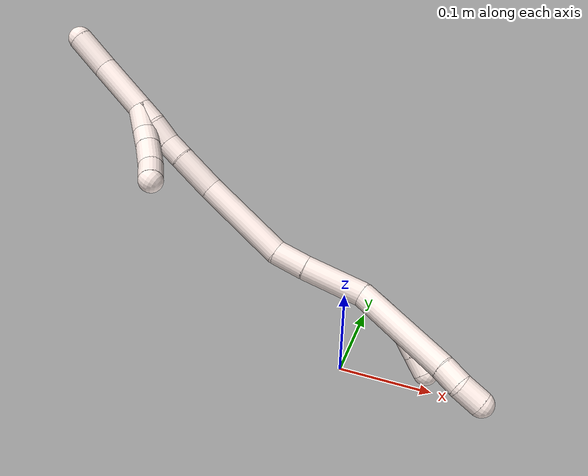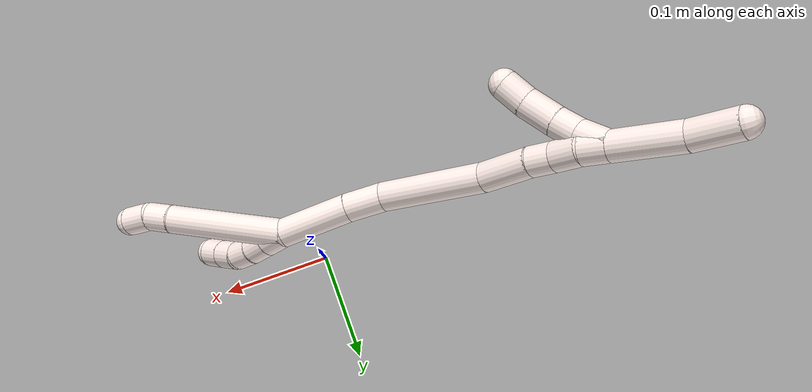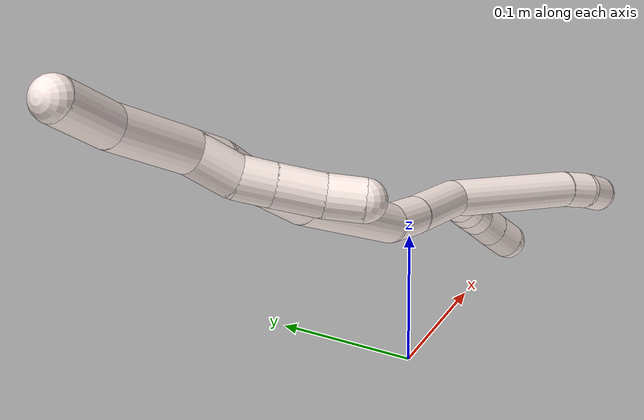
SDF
<sdf version="1.7">
 <world name="default">
  <model name="photoneo_s_sensor">
   <static>1</static>
   <pose>0 0 2 1.57079 1.57079 3.14159</pose>
   <link name="link">
    <inertial><mass>0.1</mass></inertial>
    <sensor name="sensor" type="depth">
     <update_rate>30</update_rate>
     <camera>
      <horizontal_fov>1.22</horizontal_fov>
      <image><width>1920</width><height>1200</height><format>B8G8R8</format></image>
      <clip><near>0.1</near><far>4</far></clip>
      <depth_camera><output>points</output></depth_camera>
     </camera>
     <plugin name="camera_plugin" filename="libgazebo_ros_depth_camera.so">
      <baseline>0.2</baseline>
      <alwaysOn>1</alwaysOn>
      <updateRate>0.0</updateRate>
      <cameraName>camera_ir</cameraName>
      <imageTopicName>/camera/color/image_raw</imageTopicName>
      <cameraInfoTopicName>/camera/color/camera_info</cameraInfoTopicName>
      <depthImageTopicName>/camera/depth/image_raw</depthImageTopicName>
      <depthImageCameraInfoTopicName>/camera/depth/camera_info</depthImageCameraInfoTopicName>
      <pointCloudTopicName>/camera/depth/points</pointCloudTopicName>
      <frameName>fr_optical</frameName>
      <pointCloudCutoff>0.1</pointCloudCutoff>
      <pointCloudCutoffMax>2.0</pointCloudCutoffMax>
      <distortionK1>0</distortionK1>
      <distortionK2>0</distortionK2>
      <distortionK3>0</distortionK3>
      <distortionT1>0</distortionT1>
      <distortionT2>0</distortionT2>
      <CxPrime>0</CxPrime>
      <Cx>0</Cx>
      <Cy>0</Cy>
      <focalLength>0</focalLength>
      <hackBaseline>0</hackBaseline>
     </plugin>
    </sensor>
   </link>
  </model>
  <model name="bin">
   <static>1</static>
   <link name="bottom">
    <collision name="collision-bottom">
     <pose>0 0 -0.01 0 -0 0</pose>
     <geometry><box><size>0.8 0.6 0.02</size></box></geometry>
     <surface>
      <friction><ode><mu>100</mu><mu2>100</mu2></ode></friction>
      <contact><collide_bitmask>65535</collide_bitmask></contact>
     </surface>
    </collision>
   </link>
   <link name="west_wall">
    <collision name="collision-west_wall">
     <pose>-0.41 0 0.1 0 -0 0</pose>
     <geometry><box><size>0.02 0.6 0.2</size></box></geometry>
     <surface>
      <friction><ode><mu>100</mu><mu2>100</mu2></ode></friction>
      <contact><collide_bitmask>65535</collide_bitmask></contact>
     </surface>
    </collision>
   </link>
   <link name="east_wall">
    <collision name="collision-east_wall">
     <pose>0.41 0 0.1 0 -0 0</pose>
     <geometry><box><size>0.02 0.6 0.2</size></box></geometry>
     <surface>
      <friction><ode><mu>100</mu><mu2>100</mu2></ode></friction>
      <contact><collide_bitmask>65535</collide_bitmask></contact>
     </surface>
    </collision>
   </link>
   <link name="south_wall">
    <collision name="collision-south_wall">
     <pose>0 -0.31 0.1 0 -0 0</pose>
     <geometry><box><size>0.8 0.02 0.2</size></box></geometry>
     <surface>
      <friction><ode><mu>100</mu><mu2>100</mu2></ode></friction>
      <contact><collide_bitmask>65535</collide_bitmask></contact>
     </surface>
    </collision>
   </link>
   <link name="north_wall">
    <collision name="collision-north_wall">
     <pose>0 0.31 0.1 0 -0 0</pose>
     <geometry><box><size>0.8 0.02 0.2</size></box></geometry>
     <surface>
      <friction><ode><mu>100</mu><mu2>100</mu2></ode></friction>
      <contact><collide_bitmask>65535</collide_bitmask></contact>
     </surface>
    </collision>
   </link>
  </model>
  <model name="11">
   <static>0</static>
   <link name="11">
    <collision name="collision-cylinder-e_1_2_8">
     <pose>0.018518 -0.007825 -0.04826 2.98086 0.362059 2.31252</pose>
     <geometry><cylinder><radius>0.0125</radius><length>0.10456</length></cylinder></geometry>
     <surface>
      <friction><ode><mu>1.16</mu><mu2>1.16</mu2><slip1>0</slip1><slip2>0</slip2></ode></friction>
      <contact><ode><kp>1e+06</kp><kd>1</kd><max_vel>0</max_vel><min_depth>0.001</min_depth></ode></contact>
     </surface>
    </collision>
    <visual name="visual-cylinder-e_1_2_8">
     <pose>0.018518 -0.007825 -0.04826 2.98086 0.362059 2.31252</pose>
     <geometry><cylinder><radius>0.0125</radius><length>0.10456</length></cylinder></geometry>
     <material><ambient>1 0.933333 0.909804 1</ambient></material>
    </visual>
    <collision name="collision-cylinder-e_2_8_9">
     <pose>0.040059 -0.018103 -0.106786 2.90697 0.278997 1.74505</pose>
     <geometry><cylinder><radius>0.0125</radius><length>0.021958</length></cylinder></geometry>
     <surface>
      <friction><ode><mu>1.16</mu><mu2>1.16</mu2><slip1>0</slip1><slip2>0</slip2></ode></friction>
      <contact><ode><kp>1e+06</kp><kd>1</kd><max_vel>0</max_vel><min_depth>0.001</min_depth></ode></contact>
     </surface>
    </collision>
    <visual name="visual-cylinder-e_2_8_9">
     <pose>0.040059 -0.018103 -0.106786 2.90697 0.278997 1.74505</pose>
     <geometry><cylinder><radius>0.0125</radius><length>0.021958</length></cylinder></geometry>
     <material><ambient>1 0.933333 0.909804 1</ambient></material>
    </visual>
    <collision name="collision-cylinder-e_3_9_6">
     <pose>0.042825 -0.021779 -0.128726 3.03723 -0.021914 -0.413598</pose>
     <geometry><cylinder><radius>0.0125</radius><length>0.023482</length></cylinder></geometry>
     <surface>
      <friction><ode><mu>1.16</mu><mu2>1.16</mu2><slip1>0</slip1><slip2>0</slip2></ode></friction>
      <contact><ode><kp>1e+06</kp><kd>1</kd><max_vel>0</max_vel><min_depth>0.001</min_depth></ode></contact>
     </surface>
    </collision>
    <visual name="visual-cylinder-e_3_9_6">
     <pose>0.042825 -0.021779 -0.128726 3.03723 -0.021914 -0.413598</pose>
     <geometry><cylinder><radius>0.0125</radius><length>0.023482</length></cylinder></geometry>
     <material><ambient>1 0.933333 0.909804 1</ambient></material>
    </visual>
    <collision name="collision-cylinder-e_1_2_10">
     <pose>-0.002828 -0.000738 -0.009563 3.06458 -0.286703 -2.61995</pose>
     <geometry><cylinder><radius>0.0125</radius><length>0.02</length></cylinder></geometry>
     <surface>
      <friction><ode><mu>1.16</mu><mu2>1.16</mu2><slip1>0</slip1><slip2>0</slip2></ode></friction>
      <contact><ode><kp>1e+06</kp><kd>1</kd><max_vel>0</max_vel><min_depth>0.001</min_depth></ode></contact>
     </surface>
    </collision>
    <visual name="visual-cylinder-e_1_2_10">
     <pose>-0.002828 -0.000738 -0.009563 3.06458 -0.286703 -2.61995</pose>
     <geometry><cylinder><radius>0.0125</radius><length>0.02</length></cylinder></geometry>
     <material><ambient>1 0.933333 0.909804 1</ambient></material>
    </visual>
    <collision name="collision-cylinder-e_2_10_11">
     <pose>-0.00855 -0.002384 -0.028656 3.04658 -0.293606 -2.51941</pose>
     <geometry><cylinder><radius>0.0125</radius><length>0.02</length></cylinder></geometry>
     <surface>
      <friction><ode><mu>1.16</mu><mu2>1.16</mu2><slip1>0</slip1><slip2>0</slip2></ode></friction>
      <contact><ode><kp>1e+06</kp><kd>1</kd><max_vel>0</max_vel><min_depth>0.001</min_depth></ode></contact>
     </surface>
    </collision>
    <visual name="visual-cylinder-e_2_10_11">
     <pose>-0.00855 -0.002384 -0.028656 3.04658 -0.293606 -2.51941</pose>
     <geometry><cylinder><radius>0.0125</radius><length>0.02</length></cylinder></geometry>
     <material><ambient>1 0.933333 0.909804 1</ambient></material>
    </visual>
    <collision name="collision-cylinder-e_3_11_12">
     <pose>-0.013704 -0.004977 -0.047779 2.96778 -0.228013 -1.84069</pose>
     <geometry><cylinder><radius>0.0125</radius><length>0.02</length></cylinder></geometry>
     <surface>
      <friction><ode><mu>1.16</mu><mu2>1.16</mu2><slip1>0</slip1><slip2>0</slip2></ode></friction>
      <contact><ode><kp>1e+06</kp><kd>1</kd><max_vel>0</max_vel><min_depth>0.001</min_depth></ode></contact>
     </surface>
    </collision>
    <visual name="visual-cylinder-e_3_11_12">
     <pose>-0.013704 -0.004977 -0.047779 2.96778 -0.228013 -1.84069</pose>
     <geometry><cylinder><radius>0.0125</radius><length>0.02</length></cylinder></geometry>
     <material><ambient>1 0.933333 0.909804 1</ambient></material>
    </visual>
    <collision name="collision-cylinder-e_4_12_13">
     <pose>-0.016773 -0.011285 -0.066204 2.65925 -0.080868 -0.32605</pose>
     <geometry><cylinder><radius>0.0125</radius><length>0.02</length></cylinder></geometry>
     <surface>
      <friction><ode><mu>1.16</mu><mu2>1.16</mu2><slip1>0</slip1><slip2>0</slip2></ode></friction>
      <contact><ode><kp>1e+06</kp><kd>1</kd><max_vel>0</max_vel><min_depth>0.001</min_depth></ode></contact>
     </surface>
    </collision>
    <visual name="visual-cylinder-e_4_12_13">
     <pose>-0.016773 -0.011285 -0.066204 2.65925 -0.080868 -0.32605</pose>
     <geometry><cylinder><radius>0.0125</radius><length>0.02</length></cylinder></geometry>
     <material><ambient>1 0.933333 0.909804 1</ambient></material>
    </visual>
    <collision name="collision-cylinder-e_5_13_5">
     <pose>-0.018187 -0.020572 -0.083859 2.65545 -0.06071 -0.243687</pose>
     <geometry><cylinder><radius>0.0125</radius><length>0.02</length></cylinder></geometry>
     <surface>
      <friction><ode><mu>1.16</mu><mu2>1.16</mu2><slip1>0</slip1><slip2>0</slip2></ode></friction>
      <contact><ode><kp>1e+06</kp><kd>1</kd><max_vel>0</max_vel><min_depth>0.001</min_depth></ode></contact>
     </surface>
    </collision>
    <visual name="visual-cylinder-e_5_13_5">
     <pose>-0.018187 -0.020572 -0.083859 2.65545 -0.06071 -0.243687</pose>
     <geometry><cylinder><radius>0.0125</radius><length>0.02</length></cylinder></geometry>
     <material><ambient>1 0.933333 0.909804 1</ambient></material>
    </visual>
    <collision name="collision-cylinder-e_1_2_14">
     <pose>-0.000804 -0.005528 0.030603 0.1787 -0.025851 -0.002316</pose>
     <geometry><cylinder><radius>0.0125</radius><length>0.062217</length></cylinder></geometry>
     <surface>
      <friction><ode><mu>1.16</mu><mu2>1.16</mu2><slip1>0</slip1><slip2>0</slip2></ode></friction>
      <contact><ode><kp>1e+06</kp><kd>1</kd><max_vel>0</max_vel><min_depth>0.001</min_depth></ode></contact>
     </surface>
    </collision>
    <visual name="visual-cylinder-e_1_2_14">
     <pose>-0.000804 -0.005528 0.030603 0.1787 -0.025851 -0.002316</pose>
     <geometry><cylinder><radius>0.0125</radius><length>0.062217</length></cylinder></geometry>
     <material><ambient>1 0.933333 0.909804 1</ambient></material>
    </visual>
    <collision name="collision-cylinder-e_2_14_15">
     <pose>-0.002693 -0.013003 0.07749 0.11904 -0.066081 -0.003939</pose>
     <geometry><cylinder><radius>0.0125</radius><length>0.032871</length></cylinder></geometry>
     <surface>
      <friction><ode><mu>1.16</mu><mu2>1.16</mu2><slip1>0</slip1><slip2>0</slip2></ode></friction>
      <contact><ode><kp>1e+06</kp><kd>1</kd><max_vel>0</max_vel><min_depth>0.001</min_depth></ode></contact>
     </surface>
    </collision>
    <visual name="visual-cylinder-e_2_14_15">
     <pose>-0.002693 -0.013003 0.07749 0.11904 -0.066081 -0.003939</pose>
     <geometry><cylinder><radius>0.0125</radius><length>0.032871</length></cylinder></geometry>
     <material><ambient>1 0.933333 0.909804 1</ambient></material>
    </visual>
    <collision name="collision-cylinder-e_3_15_16">
     <pose>-0.002837 -0.007853 0.140159 -0.151844 0.02006 -0.001526</pose>
     <geometry><cylinder><radius>0.0125</radius><length>0.093869</length></cylinder></geometry>
     <surface>
      <friction><ode><mu>1.16</mu><mu2>1.16</mu2><slip1>0</slip1><slip2>0</slip2></ode></friction>
      <contact><ode><kp>1e+06</kp><kd>1</kd><max_vel>0</max_vel><min_depth>0.001</min_depth></ode></contact>
     </surface>
    </collision>
    <visual name="visual-cylinder-e_3_15_16">
     <pose>-0.002837 -0.007853 0.140159 -0.151844 0.02006 -0.001526</pose>
     <geometry><cylinder><radius>0.0125</radius><length>0.093869</length></cylinder></geometry>
     <material><ambient>1 0.933333 0.909804 1</ambient></material>
    </visual>
    <collision name="collision-cylinder-e_4_16_17">
     <pose>0.002214 0.003129 0.20772 -0.181394 0.188611 -0.017204</pose>
     <geometry><cylinder><radius>0.0125</radius><length>0.043836</length></cylinder></geometry>
     <surface>
      <friction><ode><mu>1.16</mu><mu2>1.16</mu2><slip1>0</slip1><slip2>0</slip2></ode></friction>
      <contact><ode><kp>1e+06</kp><kd>1</kd><max_vel>0</max_vel><min_depth>0.001</min_depth></ode></contact>
     </surface>
    </collision>
    <visual name="visual-cylinder-e_4_16_17">
     <pose>0.002214 0.003129 0.20772 -0.181394 0.188611 -0.017204</pose>
     <geometry><cylinder><radius>0.0125</radius><length>0.043836</length></cylinder></geometry>
     <material><ambient>1 0.933333 0.909804 1</ambient></material>
    </visual>
    <collision name="collision-cylinder-e_5_17_18">
     <pose>0.007102 0.008984 0.239051 -0.191726 0.075128 -0.007227</pose>
     <geometry><cylinder><radius>0.0125</radius><length>0.020746</length></cylinder></geometry>
     <surface>
      <friction><ode><mu>1.16</mu><mu2>1.16</mu2><slip1>0</slip1><slip2>0</slip2></ode></friction>
      <contact><ode><kp>1e+06</kp><kd>1</kd><max_vel>0</max_vel><min_depth>0.001</min_depth></ode></contact>
     </surface>
    </collision>
    <visual name="visual-cylinder-e_5_17_18">
     <pose>0.007102 0.008984 0.239051 -0.191726 0.075128 -0.007227</pose>
     <geometry><cylinder><radius>0.0125</radius><length>0.020746</length></cylinder></geometry>
     <material><ambient>1 0.933333 0.909804 1</ambient></material>
    </visual>
    <collision name="collision-cylinder-e_6_18_19">
     <pose>0.010287 0.014523 0.260566 -0.304291 0.199373 -0.030669</pose>
     <geometry><cylinder><radius>0.0125</radius><length>0.024298</length></cylinder></geometry>
     <surface>
      <friction><ode><mu>1.16</mu><mu2>1.16</mu2><slip1>0</slip1><slip2>0</slip2></ode></friction>
      <contact><ode><kp>1e+06</kp><kd>1</kd><max_vel>0</max_vel><min_depth>0.001</min_depth></ode></contact>
     </surface>
    </collision>
    <visual name="visual-cylinder-e_6_18_19">
     <pose>0.010287 0.014523 0.260566 -0.304291 0.199373 -0.030669</pose>
     <geometry><cylinder><radius>0.0125</radius><length>0.024298</length></cylinder></geometry>
     <material><ambient>1 0.933333 0.909804 1</ambient></material>
    </visual>
    <collision name="collision-cylinder-e_7_19_1">
     <pose>0.012825 0.02066 0.282706 -0.233957 0.011963 -0.001406</pose>
     <geometry><cylinder><radius>0.0125</radius><length>0.022162</length></cylinder></geometry>
     <surface>
      <friction><ode><mu>1.16</mu><mu2>1.16</mu2><slip1>0</slip1><slip2>0</slip2></ode></friction>
      <contact><ode><kp>1e+06</kp><kd>1</kd><max_vel>0</max_vel><min_depth>0.001</min_depth></ode></contact>
     </surface>
    </collision>
    <visual name="visual-cylinder-e_7_19_1">
     <pose>0.012825 0.02066 0.282706 -0.233957 0.011963 -0.001406</pose>
     <geometry><cylinder><radius>0.0125</radius><length>0.022162</length></cylinder></geometry>
     <material><ambient>1 0.933333 0.909804 1</ambient></material>
    </visual>
    <collision name="collision-cylinder-e_1_1_20">
     <pose>0.015157 0.014269 0.282897 2.43927 0.157251 0.423675</pose>
     <geometry><cylinder><radius>0.0125</radius><length>0.028084</length></cylinder></geometry>
     <surface>
      <friction><ode><mu>1.16</mu><mu2>1.16</mu2><slip1>0</slip1><slip2>0</slip2></ode></friction>
      <contact><ode><kp>1e+06</kp><kd>1</kd><max_vel>0</max_vel><min_depth>0.001</min_depth></ode></contact>
     </surface>
    </collision>
    <visual name="visual-cylinder-e_1_1_20">
     <pose>0.015157 0.014269 0.282897 2.43927 0.157251 0.423675</pose>
     <geometry><cylinder><radius>0.0125</radius><length>0.028084</length></cylinder></geometry>
     <material><ambient>1 0.933333 0.909804 1</ambient></material>
    </visual>
    <collision name="collision-cylinder-e_2_20_21">
     <pose>0.02206 -0.000279 0.264725 2.50664 0.463086 1.24478</pose>
     <geometry><cylinder><radius>0.0125</radius><length>0.021064</length></cylinder></geometry>
     <surface>
      <friction><ode><mu>1.16</mu><mu2>1.16</mu2><slip1>0</slip1><slip2>0</slip2></ode></friction>
      <contact><ode><kp>1e+06</kp><kd>1</kd><max_vel>0</max_vel><min_depth>0.001</min_depth></ode></contact>
     </surface>
    </collision>
    <visual name="visual-cylinder-e_2_20_21">
     <pose>0.02206 -0.000279 0.264725 2.50664 0.463086 1.24478</pose>
     <geometry><cylinder><radius>0.0125</radius><length>0.021064</length></cylinder></geometry>
     <material><ambient>1 0.933333 0.909804 1</ambient></material>
    </visual>
    <collision name="collision-cylinder-e_3_21_22">
     <pose>0.033823 -0.013663 0.247559 2.45856 0.519195 1.28342</pose>
     <geometry><cylinder><radius>0.0125</radius><length>0.02845</length></cylinder></geometry>
     <surface>
      <friction><ode><mu>1.16</mu><mu2>1.16</mu2><slip1>0</slip1><slip2>0</slip2></ode></friction>
      <contact><ode><kp>1e+06</kp><kd>1</kd><max_vel>0</max_vel><min_depth>0.001</min_depth></ode></contact>
     </surface>
    </collision>
    <visual name="visual-cylinder-e_3_21_22">
     <pose>0.033823 -0.013663 0.247559 2.45856 0.519195 1.28342</pose>
     <geometry><cylinder><radius>0.0125</radius><length>0.02845</length></cylinder></geometry>
     <material><ambient>1 0.933333 0.909804 1</ambient></material>
    </visual>
    <collision name="collision-cylinder-e_4_22_4">
     <pose>0.047889 -0.027367 0.231541 2.39894 0.675909 1.46843</pose>
     <geometry><cylinder><radius>0.0125</radius><length>0.022402</length></cylinder></geometry>
     <surface>
      <friction><ode><mu>1.16</mu><mu2>1.16</mu2><slip1>0</slip1><slip2>0</slip2></ode></friction>
      <contact><ode><kp>1e+06</kp><kd>1</kd><max_vel>0</max_vel><min_depth>0.001</min_depth></ode></contact>
     </surface>
    </collision>
    <visual name="visual-cylinder-e_4_22_4">
     <pose>0.047889 -0.027367 0.231541 2.39894 0.675909 1.46843</pose>
     <geometry><cylinder><radius>0.0125</radius><length>0.022402</length></cylinder></geometry>
     <material><ambient>1 0.933333 0.909804 1</ambient></material>
    </visual>
    <collision name="collision-cylinder-e_1_1_23">
     <pose>0.013236 0.030038 0.32226 -0.232374 0.009418 -0.001099</pose>
     <geometry><cylinder><radius>0.0125</radius><length>0.059144</length></cylinder></geometry>
     <surface>
      <friction><ode><mu>1.16</mu><mu2>1.16</mu2><slip1>0</slip1><slip2>0</slip2></ode></friction>
      <contact><ode><kp>1e+06</kp><kd>1</kd><max_vel>0</max_vel><min_depth>0.001</min_depth></ode></contact>
     </surface>
    </collision>
    <visual name="visual-cylinder-e_1_1_23">
     <pose>0.013236 0.030038 0.32226 -0.232374 0.009418 -0.001099</pose>
     <geometry><cylinder><radius>0.0125</radius><length>0.059144</length></cylinder></geometry>
     <material><ambient>1 0.933333 0.909804 1</ambient></material>
    </visual>
    <collision name="collision-cylinder-e_2_23_3">
     <pose>0.016442 0.041608 0.370684 -0.237671 0.143813 -0.0172</pose>
     <geometry><cylinder><radius>0.0125</radius><length>0.040856</length></cylinder></geometry>
     <surface>
      <friction><ode><mu>1.16</mu><mu2>1.16</mu2><slip1>0</slip1><slip2>0</slip2></ode></friction>
      <contact><ode><kp>1e+06</kp><kd>1</kd><max_vel>0</max_vel><min_depth>0.001</min_depth></ode></contact>
     </surface>
    </collision>
    <visual name="visual-cylinder-e_2_23_3">
     <pose>0.016442 0.041608 0.370684 -0.237671 0.143813 -0.0172</pose>
     <geometry><cylinder><radius>0.0125</radius><length>0.040856</length></cylinder></geometry>
     <material><ambient>1 0.933333 0.909804 1</ambient></material>
    </visual>
    <collision name="collision-sphere-3">
     <pose>0.01937 0.046368 0.390333 0 -0 0</pose>
     <geometry><sphere><radius>0.0125</radius></sphere></geometry>
     <surface>
      <friction><ode><mu>1.16</mu><mu2>1.16</mu2><slip1>0</slip1><slip2>0</slip2></ode></friction>
      <contact><ode><kp>1e+06</kp><kd>1</kd><max_vel>0</max_vel><min_depth>0.001</min_depth></ode></contact>
     </surface>
    </collision>
    <visual name="visual-sphere-3">
     <pose>0.01937 0.046368 0.390333 0 -0 0</pose>
     <geometry><sphere><radius>0.0125</radius></sphere></geometry>
     <material><ambient>1 0.933333 0.909804 1</ambient></material>
    </visual>
    <collision name="collision-sphere-23">
     <pose>0.013515 0.036848 0.351035 0 -0 0</pose>
     <geometry><sphere><radius>0.0125</radius></sphere></geometry>
     <surface>
      <friction><ode><mu>1.16</mu><mu2>1.16</mu2><slip1>0</slip1><slip2>0</slip2></ode></friction>
      <contact><ode><kp>1e+06</kp><kd>1</kd><max_vel>0</max_vel><min_depth>0.001</min_depth></ode></contact>
     </surface>
    </collision>
    <visual name="visual-sphere-23">
     <pose>0.013515 0.036848 0.351035 0 -0 0</pose>
     <geometry><sphere><radius>0.0125</radius></sphere></geometry>
     <material><ambient>1 0.933333 0.909804 1</ambient></material>
    </visual>
    <collision name="collision-sphere-4">
     <pose>0.054897 -0.033276 0.225104 0 -0 0</pose>
     <geometry><sphere><radius>0.0125</radius></sphere></geometry>
     <surface>
      <friction><ode><mu>1.16</mu><mu2>1.16</mu2><slip1>0</slip1><slip2>0</slip2></ode></friction>
      <contact><ode><kp>1e+06</kp><kd>1</kd><max_vel>0</max_vel><min_depth>0.001</min_depth></ode></contact>
     </surface>
    </collision>
    <visual name="visual-sphere-4">
     <pose>0.054897 -0.033276 0.225104 0 -0 0</pose>
     <geometry><sphere><radius>0.0125</radius></sphere></geometry>
     <material><ambient>1 0.933333 0.909804 1</ambient></material>
    </visual>
    <collision name="collision-sphere-22">
     <pose>0.040882 -0.021458 0.237979 0 -0 0</pose>
     <geometry><sphere><radius>0.0125</radius></sphere></geometry>
     <surface>
      <friction><ode><mu>1.16</mu><mu2>1.16</mu2><slip1>0</slip1><slip2>0</slip2></ode></friction>
      <contact><ode><kp>1e+06</kp><kd>1</kd><max_vel>0</max_vel><min_depth>0.001</min_depth></ode></contact>
     </surface>
    </collision>
    <visual name="visual-sphere-22">
     <pose>0.040882 -0.021458 0.237979 0 -0 0</pose>
     <geometry><sphere><radius>0.0125</radius></sphere></geometry>
     <material><ambient>1 0.933333 0.909804 1</ambient></material>
    </visual>
    <collision name="collision-sphere-21">
     <pose>0.026765 -0.005868 0.257139 0 -0 0</pose>
     <geometry><sphere><radius>0.0125</radius></sphere></geometry>
     <surface>
      <friction><ode><mu>1.16</mu><mu2>1.16</mu2><slip1>0</slip1><slip2>0</slip2></ode></friction>
      <contact><ode><kp>1e+06</kp><kd>1</kd><max_vel>0</max_vel><min_depth>0.001</min_depth></ode></contact>
     </surface>
    </collision>
    <visual name="visual-sphere-21">
     <pose>0.026765 -0.005868 0.257139 0 -0 0</pose>
     <geometry><sphere><radius>0.0125</radius></sphere></geometry>
     <material><ambient>1 0.933333 0.909804 1</ambient></material>
    </visual>
    <collision name="collision-sphere-20">
     <pose>0.017356 0.00531 0.272311 0 -0 0</pose>
     <geometry><sphere><radius>0.0125</radius></sphere></geometry>
     <surface>
      <friction><ode><mu>1.16</mu><mu2>1.16</mu2><slip1>0</slip1><slip2>0</slip2></ode></friction>
      <contact><ode><kp>1e+06</kp><kd>1</kd><max_vel>0</max_vel><min_depth>0.001</min_depth></ode></contact>
     </surface>
    </collision>
    <visual name="visual-sphere-20">
     <pose>0.017356 0.00531 0.272311 0 -0 0</pose>
     <geometry><sphere><radius>0.0125</radius></sphere></geometry>
     <material><ambient>1 0.933333 0.909804 1</ambient></material>
    </visual>
    <collision name="collision-sphere-11">
     <pose>-0.011444 -0.003292 -0.038185 0 -0 0</pose>
     <geometry><sphere><radius>0.0125</radius></sphere></geometry>
     <surface>
      <friction><ode><mu>1.16</mu><mu2>1.16</mu2><slip1>0</slip1><slip2>0</slip2></ode></friction>
      <contact><ode><kp>1e+06</kp><kd>1</kd><max_vel>0</max_vel><min_depth>0.001</min_depth></ode></contact>
     </surface>
    </collision>
    <visual name="visual-sphere-11">
     <pose>-0.011444 -0.003292 -0.038185 0 -0 0</pose>
     <geometry><sphere><radius>0.0125</radius></sphere></geometry>
     <material><ambient>1 0.933333 0.909804 1</ambient></material>
    </visual>
    <collision name="collision-sphere-10">
     <pose>-0.005656 -0.001476 -0.019127 0 -0 0</pose>
     <geometry><sphere><radius>0.0125</radius></sphere></geometry>
     <surface>
      <friction><ode><mu>1.16</mu><mu2>1.16</mu2><slip1>0</slip1><slip2>0</slip2></ode></friction>
      <contact><ode><kp>1e+06</kp><kd>1</kd><max_vel>0</max_vel><min_depth>0.001</min_depth></ode></contact>
     </surface>
    </collision>
    <visual name="visual-sphere-10">
     <pose>-0.005656 -0.001476 -0.019127 0 -0 0</pose>
     <geometry><sphere><radius>0.0125</radius></sphere></geometry>
     <material><ambient>1 0.933333 0.909804 1</ambient></material>
    </visual>
    <collision name="collision-sphere-6">
     <pose>0.042568 -0.023002 -0.1404 0 -0 0</pose>
     <geometry><sphere><radius>0.0125</radius></sphere></geometry>
     <surface>
      <friction><ode><mu>1.16</mu><mu2>1.16</mu2><slip1>0</slip1><slip2>0</slip2></ode></friction>
      <contact><ode><kp>1e+06</kp><kd>1</kd><max_vel>0</max_vel><min_depth>0.001</min_depth></ode></contact>
     </surface>
    </collision>
    <visual name="visual-sphere-6">
     <pose>0.042568 -0.023002 -0.1404 0 -0 0</pose>
     <geometry><sphere><radius>0.0125</radius></sphere></geometry>
     <material><ambient>1 0.933333 0.909804 1</ambient></material>
    </visual>
    <collision name="collision-sphere-9">
     <pose>0.043082 -0.020556 -0.117051 0 -0 0</pose>
     <geometry><sphere><radius>0.0125</radius></sphere></geometry>
     <surface>
      <friction><ode><mu>1.16</mu><mu2>1.16</mu2><slip1>0</slip1><slip2>0</slip2></ode></friction>
      <contact><ode><kp>1e+06</kp><kd>1</kd><max_vel>0</max_vel><min_depth>0.001</min_depth></ode></contact>
     </surface>
    </collision>
    <visual name="visual-sphere-9">
     <pose>0.043082 -0.020556 -0.117051 0 -0 0</pose>
     <geometry><sphere><radius>0.0125</radius></sphere></geometry>
     <material><ambient>1 0.933333 0.909804 1</ambient></material>
    </visual>
    <collision name="collision-sphere-2">
     <geometry><sphere><radius>0.0125</radius></sphere></geometry>
     <surface>
      <friction><ode><mu>1.16</mu><mu2>1.16</mu2><slip1>0</slip1><slip2>0</slip2></ode></friction>
      <contact><ode><kp>1e+06</kp><kd>1</kd><max_vel>0</max_vel><min_depth>0.001</min_depth></ode></contact>
     </surface>
    </collision>
    <visual name="visual-sphere-2">
     <geometry><sphere><radius>0.0125</radius></sphere></geometry>
     <material><ambient>1 0.933333 0.909804 1</ambient></material>
    </visual>
    <collision name="collision-sphere-19">
     <pose>0.012693 0.018091 0.271927 0 -0 0</pose>
     <geometry><sphere><radius>0.0125</radius></sphere></geometry>
     <surface>
      <friction><ode><mu>1.16</mu><mu2>1.16</mu2><slip1>0</slip1><slip2>0</slip2></ode></friction>
      <contact><ode><kp>1e+06</kp><kd>1</kd><max_vel>0</max_vel><min_depth>0.001</min_depth></ode></contact>
     </surface>
    </collision>
    <visual name="visual-sphere-19">
     <pose>0.012693 0.018091 0.271927 0 -0 0</pose>
     <geometry><sphere><radius>0.0125</radius></sphere></geometry>
     <material><ambient>1 0.933333 0.909804 1</ambient></material>
    </visual>
    <collision name="collision-sphere-8">
     <pose>0.037035 -0.015649 -0.096521 0 -0 0</pose>
     <geometry><sphere><radius>0.0125</radius></sphere></geometry>
     <surface>
      <friction><ode><mu>1.16</mu><mu2>1.16</mu2><slip1>0</slip1><slip2>0</slip2></ode></friction>
      <contact><ode><kp>1e+06</kp><kd>1</kd><max_vel>0</max_vel><min_depth>0.001</min_depth></ode></contact>
     </surface>
    </collision>
    <visual name="visual-sphere-8">
     <pose>0.037035 -0.015649 -0.096521 0 -0 0</pose>
     <geometry><sphere><radius>0.0125</radius></sphere></geometry>
     <material><ambient>1 0.933333 0.909804 1</ambient></material>
    </visual>
    <collision name="collision-sphere-12">
     <pose>-0.015965 -0.006661 -0.057373 0 -0 0</pose>
     <geometry><sphere><radius>0.0125</radius></sphere></geometry>
     <surface>
      <friction><ode><mu>1.16</mu><mu2>1.16</mu2><slip1>0</slip1><slip2>0</slip2></ode></friction>
      <contact><ode><kp>1e+06</kp><kd>1</kd><max_vel>0</max_vel><min_depth>0.001</min_depth></ode></contact>
     </surface>
    </collision>
    <visual name="visual-sphere-12">
     <pose>-0.015965 -0.006661 -0.057373 0 -0 0</pose>
     <geometry><sphere><radius>0.0125</radius></sphere></geometry>
     <material><ambient>1 0.933333 0.909804 1</ambient></material>
    </visual>
    <collision name="collision-sphere-13">
     <pose>-0.01758 -0.015908 -0.075034 0 -0 0</pose>
     <geometry><sphere><radius>0.0125</radius></sphere></geometry>
     <surface>
      <friction><ode><mu>1.16</mu><mu2>1.16</mu2><slip1>0</slip1><slip2>0</slip2></ode></friction>
      <contact><ode><kp>1e+06</kp><kd>1</kd><max_vel>0</max_vel><min_depth>0.001</min_depth></ode></contact>
     </surface>
    </collision>
    <visual name="visual-sphere-13">
     <pose>-0.01758 -0.015908 -0.075034 0 -0 0</pose>
     <geometry><sphere><radius>0.0125</radius></sphere></geometry>
     <material><ambient>1 0.933333 0.909804 1</ambient></material>
    </visual>
    <collision name="collision-sphere-5">
     <pose>-0.018794 -0.025235 -0.092684 0 -0 0</pose>
     <geometry><sphere><radius>0.0125</radius></sphere></geometry>
     <surface>
      <friction><ode><mu>1.16</mu><mu2>1.16</mu2><slip1>0</slip1><slip2>0</slip2></ode></friction>
      <contact><ode><kp>1e+06</kp><kd>1</kd><max_vel>0</max_vel><min_depth>0.001</min_depth></ode></contact>
     </surface>
    </collision>
    <visual name="visual-sphere-5">
     <pose>-0.018794 -0.025235 -0.092684 0 -0 0</pose>
     <geometry><sphere><radius>0.0125</radius></sphere></geometry>
     <material><ambient>1 0.933333 0.909804 1</ambient></material>
    </visual>
    <collision name="collision-sphere-14">
     <pose>-0.001608 -0.011055 0.061206 0 -0 0</pose>
     <geometry><sphere><radius>0.0125</radius></sphere></geometry>
     <surface>
      <friction><ode><mu>1.16</mu><mu2>1.16</mu2><slip1>0</slip1><slip2>0</slip2></ode></friction>
      <contact><ode><kp>1e+06</kp><kd>1</kd><max_vel>0</max_vel><min_depth>0.001</min_depth></ode></contact>
     </surface>
    </collision>
    <visual name="visual-sphere-14">
     <pose>-0.001608 -0.011055 0.061206 0 -0 0</pose>
     <geometry><sphere><radius>0.0125</radius></sphere></geometry>
     <material><ambient>1 0.933333 0.909804 1</ambient></material>
    </visual>
    <collision name="collision-sphere-15">
     <pose>-0.003779 -0.014951 0.093773 0 -0 0</pose>
     <geometry><sphere><radius>0.0125</radius></sphere></geometry>
     <surface>
      <friction><ode><mu>1.16</mu><mu2>1.16</mu2><slip1>0</slip1><slip2>0</slip2></ode></friction>
      <contact><ode><kp>1e+06</kp><kd>1</kd><max_vel>0</max_vel><min_depth>0.001</min_depth></ode></contact>
     </surface>
    </collision>
    <visual name="visual-sphere-15">
     <pose>-0.003779 -0.014951 0.093773 0 -0 0</pose>
     <geometry><sphere><radius>0.0125</radius></sphere></geometry>
     <material><ambient>1 0.933333 0.909804 1</ambient></material>
    </visual>
    <collision name="collision-sphere-16">
     <pose>-0.001896 -0.000755 0.186544 0 -0 0</pose>
     <geometry><sphere><radius>0.0125</radius></sphere></geometry>
     <surface>
      <friction><ode><mu>1.16</mu><mu2>1.16</mu2><slip1>0</slip1><slip2>0</slip2></ode></friction>
      <contact><ode><kp>1e+06</kp><kd>1</kd><max_vel>0</max_vel><min_depth>0.001</min_depth></ode></contact>
     </surface>
    </collision>
    <visual name="visual-sphere-16">
     <pose>-0.001896 -0.000755 0.186544 0 -0 0</pose>
     <geometry><sphere><radius>0.0125</radius></sphere></geometry>
     <material><ambient>1 0.933333 0.909804 1</ambient></material>
    </visual>
    <collision name="collision-sphere-17">
     <pose>0.006323 0.007013 0.228896 0 -0 0</pose>
     <geometry><sphere><radius>0.0125</radius></sphere></geometry>
     <surface>
      <friction><ode><mu>1.16</mu><mu2>1.16</mu2><slip1>0</slip1><slip2>0</slip2></ode></friction>
      <contact><ode><kp>1e+06</kp><kd>1</kd><max_vel>0</max_vel><min_depth>0.001</min_depth></ode></contact>
     </surface>
    </collision>
    <visual name="visual-sphere-17">
     <pose>0.006323 0.007013 0.228896 0 -0 0</pose>
     <geometry><sphere><radius>0.0125</radius></sphere></geometry>
     <material><ambient>1 0.933333 0.909804 1</ambient></material>
    </visual>
    <collision name="collision-sphere-18">
     <pose>0.00788 0.010955 0.249205 0 -0 0</pose>
     <geometry><sphere><radius>0.0125</radius></sphere></geometry>
     <surface>
      <friction><ode><mu>1.16</mu><mu2>1.16</mu2><slip1>0</slip1><slip2>0</slip2></ode></friction>
      <contact><ode><kp>1e+06</kp><kd>1</kd><max_vel>0</max_vel><min_depth>0.001</min_depth></ode></contact>
     </surface>
    </collision>
    <visual name="visual-sphere-18">
     <pose>0.00788 0.010955 0.249205 0 -0 0</pose>
     <geometry><sphere><radius>0.0125</radius></sphere></geometry>
     <material><ambient>1 0.933333 0.909804 1</ambient></material>
    </visual>
    <collision name="collision-sphere-1">
     <pose>0.012958 0.023228 0.293484 0 -0 0</pose>
     <geometry><sphere><radius>0.0125</radius></sphere></geometry>
     <surface>
      <friction><ode><mu>1.16</mu><mu2>1.16</mu2><slip1>0</slip1><slip2>0</slip2></ode></friction>
      <contact><ode><kp>1e+06</kp><kd>1</kd><max_vel>0</max_vel><min_depth>0.001</min_depth></ode></contact>
     </surface>
    </collision>
    <visual name="visual-sphere-1">
     <pose>0.012958 0.023228 0.293484 0 -0 0</pose>
     <geometry><sphere><radius>0.0125</radius></sphere></geometry>
     <material><ambient>1 0.933333 0.909804 1</ambient></material>
    </visual>
    <inertial>
     <pose>0.009832 -4.1e-05 0.118787 0 -0 0</pose>
     <mass>0.75</mass>
     <inertia>
      <ixx>0.000161</ixx>
      <ixy>0</ixy>
      <ixz>0</ixz>
      <iyy>0.000274</iyy>
      <iyz>0</iyz>
      <izz>-2.8e-05</izz>
     </inertia>
    </inertial>
   </link>
   <pose>0.023597 -0.02074 0.122197 1.00514 -0.727377 -1.29021</pose>
  </model>
 </world>
</sdf>
